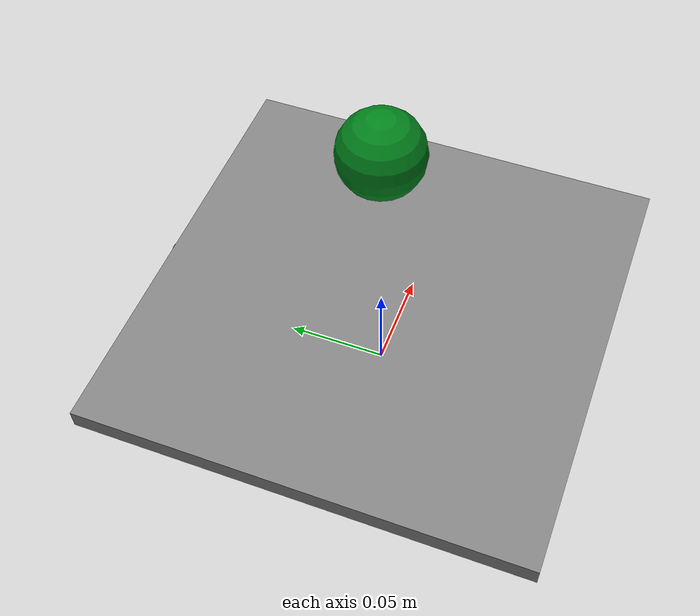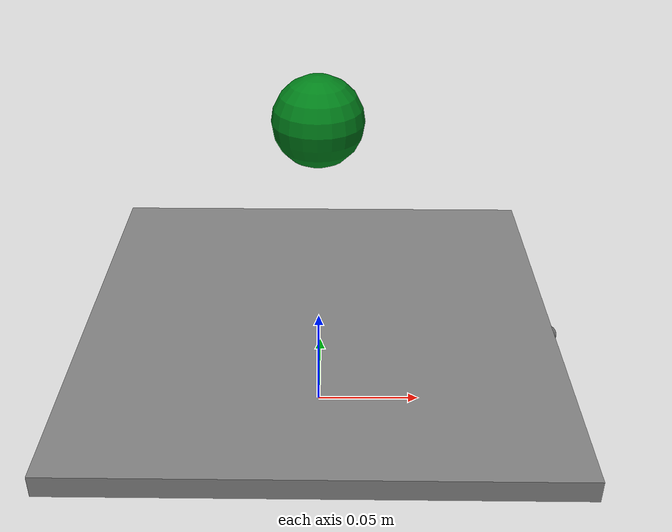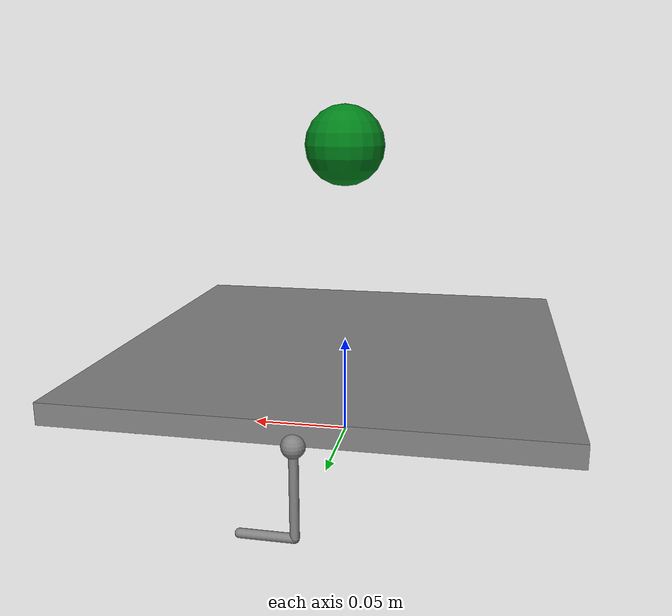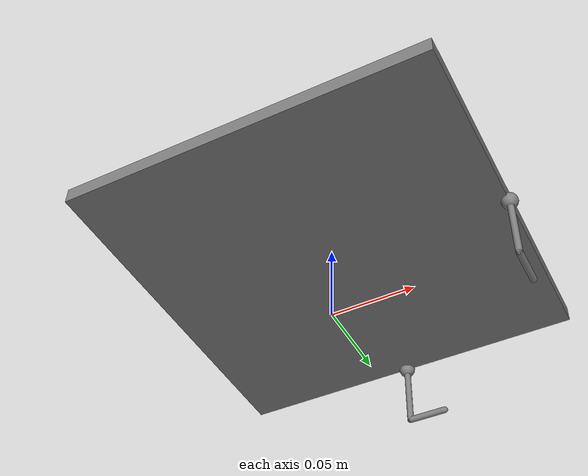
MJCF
<mujoco model="ball_plate">

    <compiler angle="degree"/>

    <option
        timestep="0.002"
        integrator="implicitfast"/>

    <default>
        <default class="servo">
            <position
                kp="1.0"
                dampratio="1.0"
                inheritrange="1"/>
        </default>
    </default>

    <worldbody>

        <light pos="0.0 0.0 0.5"/>

        <body name="build">

            <body name="plate" pos="0 0 0.045">

                <joint
                    name="plate_x"
                    type="hinge"
                    axis="1 0 0"
                    limited="true"
                    range="-10.0 10.0"/>

                <joint
                    name="plate_y"
                    type="hinge"
                    axis="0 1 0"
                    limited="true"
                    range="-10.0 10.0"/>

                <geom
                    type="box"
                    size="0.11 0.11 0.005"
                    mass="0.2"/>

                <site
                    name="IMU"
                    pos="0.0 0.0 0.0"
                    quat="1.0 0.0 0.0 0.0"/>

                <site
                    name="plate_x_attach"
                    pos="0 0.11
                         -0.005"/>

                <site
                    name="plate_y_attach"
                    pos="0.11 0
                         -0.005"/>

            </body>
        </body>

        <body
            name="servo_x_horn"
            pos="0.023
                 0.11
                 0.0">

            <joint
                name="servo_x_joint"
                type="hinge"
                axis="0 1 0"
                limited="true"
                range="-30.0 30.0"/>

            <geom
                type="capsule"
                fromto="0 0 0 -0.023 0 0"
                size="0.002"
                contype="2"
                conaffinity="0"/>

            <body
                name="link_x"
                pos="-0.023 0 0">

                <joint type="ball"/>

                <geom
                    type="capsule"
                    fromto="0 0 0 0 0 0.04"
                    size="0.002"
                    contype="2"
                    conaffinity="0"/>

                <site
                    name="link_x_tip"
                    pos="0 0 0.04"/>

            </body>
        </body>

        <body
            name="servo_y_horn"
            pos="0.11
                 0.023
                 0.0">

            <joint
                name="servo_y_joint"
                type="hinge"
                axis="1 0 0"
                limited="true"
                range="-30.0 30.0"/>

            <geom
                type="capsule"
                fromto="0 0 0 0 -0.023 0"
                size="0.002"
                contype="2"
                conaffinity="0"/>

            <body
                name="link_y"
                pos="0 -0.023 0">

                <joint type="ball"/>

                <geom
                    type="capsule"
                    fromto="0 0 0 0 0 0.04"
                    size="0.002"
                    contype="2"
                    conaffinity="0"/>

                <site
                    name="link_y_tip"
                    pos="0 0 0.04"/>

            </body>
        </body>

        <body name="ball" pos="0.0 0.0 0.15">

            <freejoint/>

            <geom
                name="ball"
                type="sphere"
                size="0.02"
                mass="0.05"
                rgba="0.0 0.5 0.1 1.0"/>

        </body>

        <camera
            name="y"
            pos="-0.1 -0.6 0.3"
            xyaxes="1.0 0.0 0.0 -1.0 -1.0 0.0"/>

    </worldbody>

    <equality>

        <connect
            site1="link_x_tip"
            site2="plate_x_attach"/>

        <connect
            site1="link_y_tip"
            site2="plate_y_attach"/>

    </equality>

    <sensor>

        <accelerometer
            name="accelerometer"
            site="IMU"/>

        <gyro
            name="gyro"
            site="IMU"/>

    </sensor>

    <actuator>

        <position
            name="servo_x"
            class="servo"
            joint="servo_x_joint"/>

        <position
            name="servo_y"
            class="servo"
            joint="servo_y_joint"/>

    </actuator>

</mujoco>
